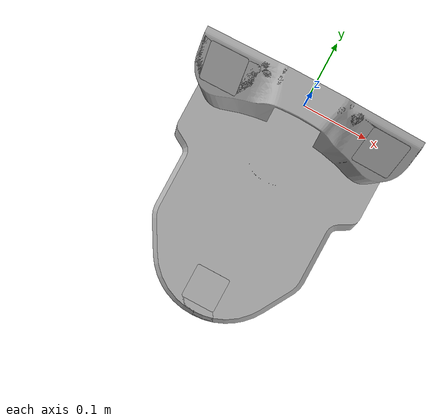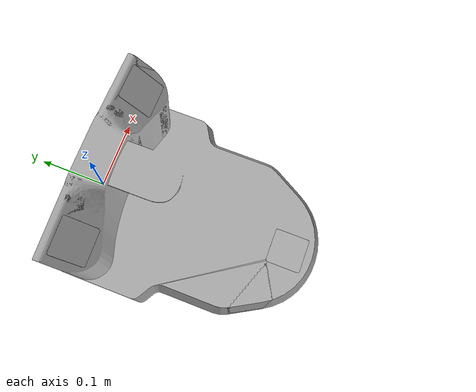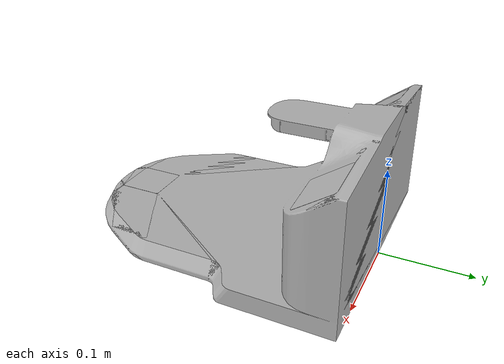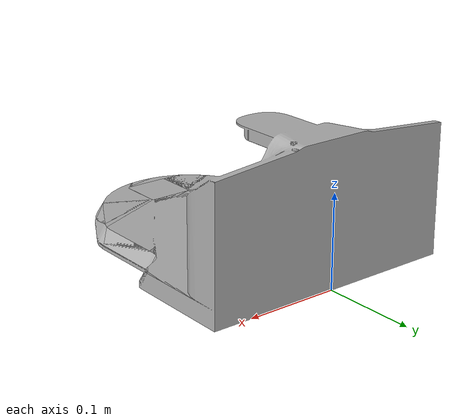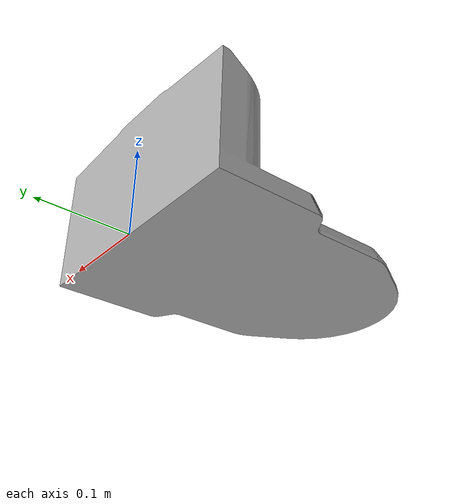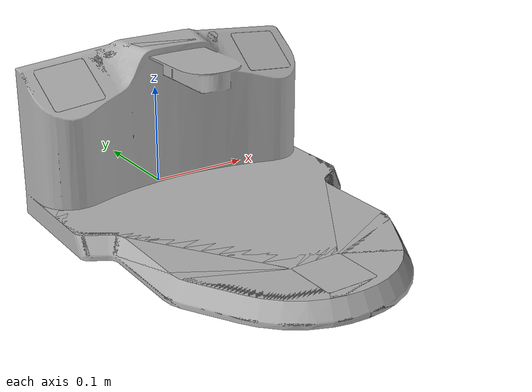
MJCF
<mujoco model="URDF_FRANCIS_ASSEM_Docking_Station_V1">
  <default>
    <default class="robot">
      <default class="visual">
        <geom contype="0" conaffinity="0" group="2" />
      </default>
      <default class="collision">
        <geom contype="0" conaffinity="1" group="3" />
      </default>
    </default>
  </default>

  <compiler angle="radian" meshdir="." balanceinertia="true" />

  <visual>
    <global offwidth="3840" offheight="2160" />
  </visual>

  <worldbody>
    <body name="docking_station_link" childclass="robot" pos="0 0 0">
      <geom name="docking_station_link_collision" type="mesh" mesh="docking_station_link_collision_docking_station_link" class="collision" />
      <geom name="docking_station_link_visual" type="mesh" mesh="docking_station_link_docking_station_link" material="default_material" class="visual" />
      <body name="contacts_link" pos="0 -0.0862 0.1335">
        <inertial pos="1.66172251238081E-07 0.0070054388859602 -0.0825486379095388" mass="3.50739982324297" diaginertia="0.0154555398316763 0.022704997137557 0.033513884132033" />
        <geom name="contacts_link_collision" type="mesh" mesh="contacts_link_collision_contacts_link" class="collision" />
        <geom name="contacts_link_visual" type="mesh" mesh="contacts_link_contacts_link" material="default_material" class="visual" />
      </body>
      <body name="left_aruco_marker_link" pos="-0.105007224114583 -0.0325573575773015 0.129200277015667" quat="0.9534 0.3016 0 0">
        <inertial pos="1.44482291657838E-05 -1.04083408558608E-16 -0.000199477439009985" mass="0.00101684792822397" diaginertia="2.11745889065529e-07 2.10646711071285e-07 4.20167128203572e-07" />
        <geom name="left_aruco_marker_link_collision" type="mesh" mesh="left_aruco_marker_link_collision_left_aruco_marker_link" class="collision" />
        <geom name="left_aruco_marker_link_visual" type="mesh" mesh="left_aruco_marker_link_left_aruco_marker_link" material="default_material" class="visual" />
      </body>
      <body name="right_aruco_marker_link" pos="0.105007224114583 -0.0325573575773018 0.129200277015666" quat="0.9534 0.3016 0 0">
        <inertial pos="-1.44482291657283E-05 7.63278329429795E-17 -0.000199477439009971" mass="0.00101684792822398" diaginertia="2.11745889065533e-07 2.1064671107129e-07 4.2016712820358e-07" />
        <geom name="right_aruco_marker_link_collision" type="mesh" mesh="right_aruco_marker_link_collision_right_aruco_marker_link" class="collision" />
        <geom name="right_aruco_marker_link_visual" type="mesh" mesh="right_aruco_marker_link_right_aruco_marker_link" material="default_material" class="visual" />
      </body>
      <body name="apex_aruco_marker_link" pos="0 -0.289303330552929 0.0201">
        <inertial pos="-3.97430642180935E-18 5.55111512312578E-17 -0.000200000000000033" mass="0.00101684792822398" diaginertia="2.10646711071288e-07 2.10646711071288e-07 4.21266306197823e-07" />
        <geom name="apex_aruco_marker_link_collision" type="mesh" mesh="apex_aruco_marker_link_collision_apex_aruco_marker_link" class="collision" />
        <geom name="apex_aruco_marker_link_visual" type="mesh" mesh="apex_aruco_marker_link_apex_aruco_marker_link" material="default_material" class="visual" />
      </body>
      <freejoint name="floating_base" />
    </body>
    <light pos="0 0 2." dir="0 0 -1" directional="true" />
  </worldbody>

  <asset>
    <material name="default_material" rgba="0.7 0.7 0.7 1" />
    <mesh name="docking_station_link_collision_docking_station_link" file="meshes/meshes\docking_station_link.STL" />
    <mesh name="docking_station_link_docking_station_link" file="meshes/meshes\docking_station_link.STL" />
    <mesh name="contacts_link_collision_contacts_link" file="meshes/meshes\contacts_link.STL" />
    <mesh name="contacts_link_contacts_link" file="meshes/meshes\contacts_link.STL" />
    <mesh name="left_aruco_marker_link_collision_left_aruco_marker_link" file="meshes/meshes\left_aruco_marker_link.STL" />
    <mesh name="left_aruco_marker_link_left_aruco_marker_link" file="meshes/meshes\left_aruco_marker_link.STL" />
    <mesh name="right_aruco_marker_link_collision_right_aruco_marker_link" file="meshes/meshes\right_aruco_marker_link.STL" />
    <mesh name="right_aruco_marker_link_right_aruco_marker_link" file="meshes/meshes\right_aruco_marker_link.STL" />
    <mesh name="apex_aruco_marker_link_collision_apex_aruco_marker_link" file="meshes/meshes\apex_aruco_marker_link.STL" />
    <mesh name="apex_aruco_marker_link_apex_aruco_marker_link" file="meshes/meshes\apex_aruco_marker_link.STL" />
    <texture type="2d" name="groundplane" builtin="checker" mark="edge" rgb1="0.2 0.3 0.4" rgb2="0.1 0.2 0.3" markrgb="0.8 0.8 0.8" width="300" height="300" />
    <material name="groundplane" texture="groundplane" texuniform="true" texrepeat="5 5" reflectance="0.2" />
    <texture type="skybox" builtin="gradient" rgb1="0.3 0.5 0.7" rgb2="0 0 0" width="512" height="3072" />
  </asset>

  <actuator />

  <visual>
    <rgba haze="0.15 0.25 0.35 1" />
  </visual>
</mujoco>
